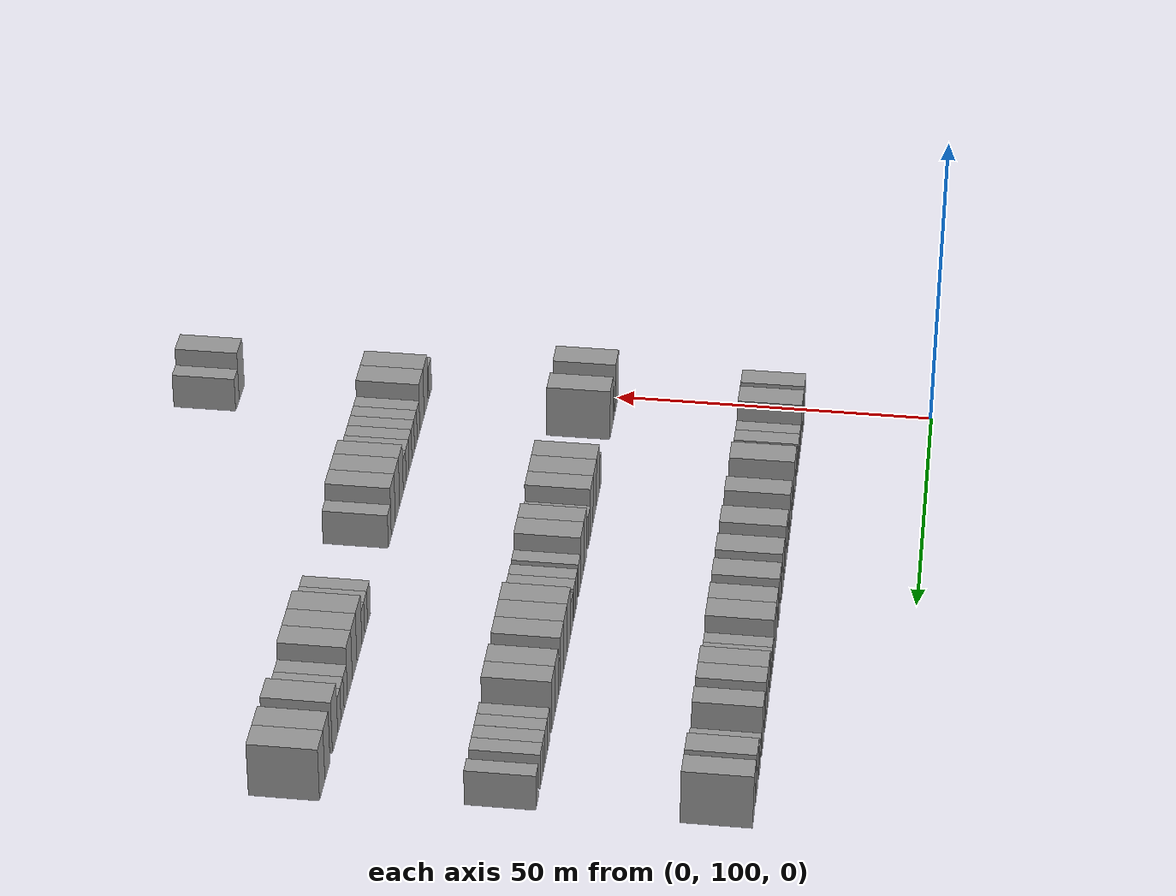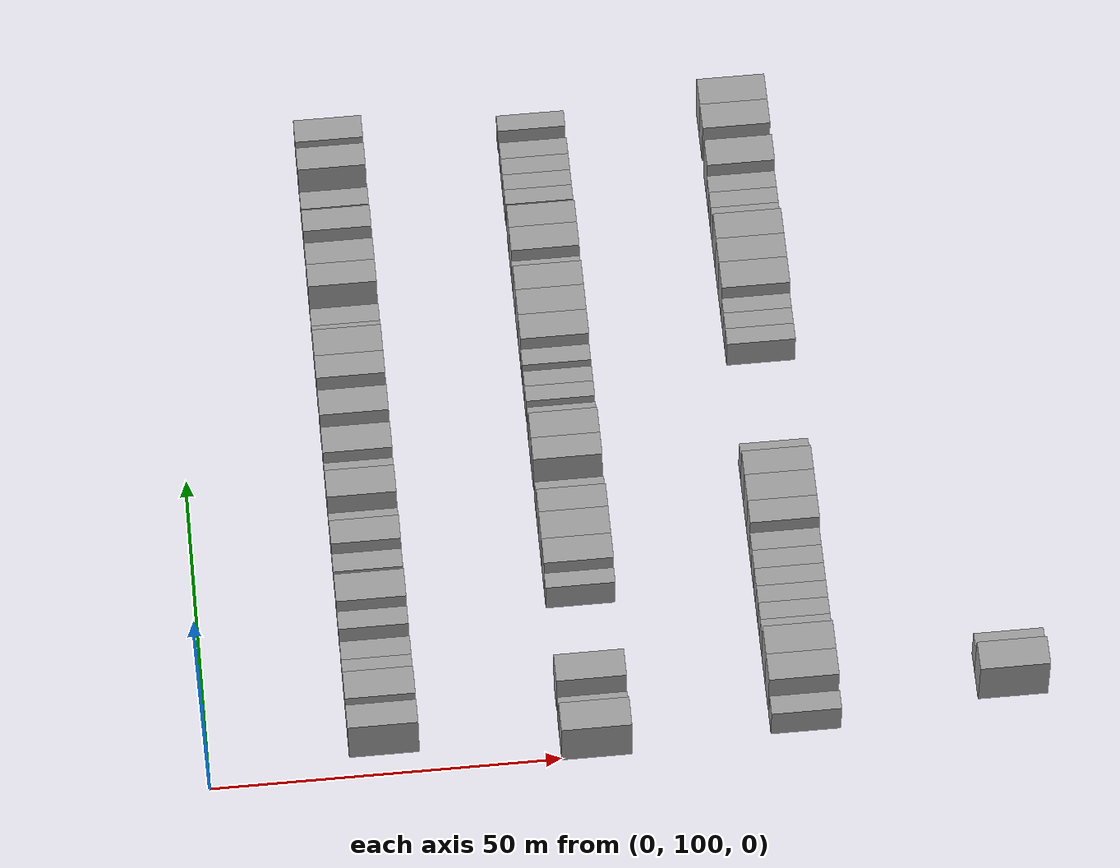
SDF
<sdf version="1.6">
 <world name="default">
  <model name="building_127">
   <static>1</static>
   <pose>25.0000 104.9648 0 0.000000 0.000000 0.000000</pose>
   <link name="link">
    <pose>0 0 4.50 0 0 0</pose>
    <collision name="collision"><geometry><box><size>10.0000 3.6911 9.0000</size></box></geometry></collision>
    <visual name="visual">
     <cast_shadows>0</cast_shadows>
     <geometry><box><size>10.0000 3.6911 9.0000</size></box></geometry>
     <material>
      <script>
       <uri>model://grey_wall/materials/scripts</uri>
       <uri>model://grey_wall/materials/textures</uri>
       <name>vrc/grey_wall</name>
      </script>
     </material>
    </visual>
   </link>
  </model>
  <model name="building_128">
   <static>1</static>
   <pose>25.0000 109.9829 0 0.000000 0.000000 0.000000</pose>
   <link name="link">
    <pose>0 0 4.50 0 0 0</pose>
    <collision name="collision"><geometry><box><size>10.0000 4.3452 9.0000</size></box></geometry></collision>
    <visual name="visual">
     <cast_shadows>0</cast_shadows>
     <geometry><box><size>10.0000 4.3452 9.0000</size></box></geometry>
     <material>
      <script>
       <uri>model://grey_wall/materials/scripts</uri>
       <uri>model://grey_wall/materials/textures</uri>
       <name>vrc/grey_wall</name>
      </script>
     </material>
    </visual>
   </link>
  </model>
  <model name="building_129">
   <static>1</static>
   <pose>25.0000 114.4085 0 0.000000 0.000000 0.000000</pose>
   <link name="link">
    <pose>0 0 3.00 0 0 0</pose>
    <collision name="collision"><geometry><box><size>10.0000 2.5061 6.0000</size></box></geometry></collision>
    <visual name="visual">
     <cast_shadows>0</cast_shadows>
     <geometry><box><size>10.0000 2.5061 6.0000</size></box></geometry>
     <material>
      <script>
       <uri>model://grey_wall/materials/scripts</uri>
       <uri>model://grey_wall/materials/textures</uri>
       <name>vrc/grey_wall</name>
      </script>
     </material>
    </visual>
   </link>
  </model>
  <model name="building_130">
   <static>1</static>
   <pose>25.0000 117.1323 0 0.000000 0.000000 0.000000</pose>
   <link name="link">
    <pose>0 0 3.00 0 0 0</pose>
    <collision name="collision"><geometry><box><size>10.0000 2.9415 6.0000</size></box></geometry></collision>
    <visual name="visual">
     <cast_shadows>0</cast_shadows>
     <geometry><box><size>10.0000 2.9415 6.0000</size></box></geometry>
     <material>
      <script>
       <uri>model://grey_wall/materials/scripts</uri>
       <uri>model://grey_wall/materials/textures</uri>
       <name>vrc/grey_wall</name>
      </script>
     </material>
    </visual>
   </link>
  </model>
  <model name="building_131">
   <static>1</static>
   <pose>25.0000 122.0449 0 0.000000 0.000000 0.000000</pose>
   <link name="link">
    <pose>0 0 3.00 0 0 0</pose>
    <collision name="collision"><geometry><box><size>10.0000 2.8836 6.0000</size></box></geometry></collision>
    <visual name="visual">
     <cast_shadows>0</cast_shadows>
     <geometry><box><size>10.0000 2.8836 6.0000</size></box></geometry>
     <material>
      <script>
       <uri>model://grey_wall/materials/scripts</uri>
       <uri>model://grey_wall/materials/textures</uri>
       <name>vrc/grey_wall</name>
      </script>
     </material>
    </visual>
   </link>
  </model>
  <model name="building_132">
   <static>1</static>
   <pose>25.0000 125.7158 0 0.000000 0.000000 0.000000</pose>
   <link name="link">
    <pose>0 0 4.50 0 0 0</pose>
    <collision name="collision"><geometry><box><size>10.0000 4.4583 9.0000</size></box></geometry></collision>
    <visual name="visual">
     <cast_shadows>0</cast_shadows>
     <geometry><box><size>10.0000 4.4583 9.0000</size></box></geometry>
     <material>
      <script>
       <uri>model://grey_wall/materials/scripts</uri>
       <uri>model://grey_wall/materials/textures</uri>
       <name>vrc/grey_wall</name>
      </script>
     </material>
    </visual>
   </link>
  </model>
  <model name="building_133">
   <static>1</static>
   <pose>25.0000 131.4169 0 0.000000 0.000000 0.000000</pose>
   <link name="link">
    <pose>0 0 3.00 0 0 0</pose>
    <collision name="collision"><geometry><box><size>10.0000 2.9439 6.0000</size></box></geometry></collision>
    <visual name="visual">
     <cast_shadows>0</cast_shadows>
     <geometry><box><size>10.0000 2.9439 6.0000</size></box></geometry>
     <material>
      <script>
       <uri>model://grey_wall/materials/scripts</uri>
       <uri>model://grey_wall/materials/textures</uri>
       <name>vrc/grey_wall</name>
      </script>
     </material>
    </visual>
   </link>
  </model>
  <model name="building_134">
   <static>1</static>
   <pose>25.0000 134.8020 0 0.000000 0.000000 0.000000</pose>
   <link name="link">
    <pose>0 0 4.50 0 0 0</pose>
    <collision name="collision"><geometry><box><size>10.0000 3.8262 9.0000</size></box></geometry></collision>
    <visual name="visual">
     <cast_shadows>0</cast_shadows>
     <geometry><box><size>10.0000 3.8262 9.0000</size></box></geometry>
     <material>
      <script>
       <uri>model://grey_wall/materials/scripts</uri>
       <uri>model://grey_wall/materials/textures</uri>
       <name>vrc/grey_wall</name>
      </script>
     </material>
    </visual>
   </link>
  </model>
  <model name="building_135">
   <static>1</static>
   <pose>25.0000 138.1453 0 0.000000 0.000000 0.000000</pose>
   <link name="link">
    <pose>0 0 3.00 0 0 0</pose>
    <collision name="collision"><geometry><box><size>10.0000 2.8604 6.0000</size></box></geometry></collision>
    <visual name="visual">
     <cast_shadows>0</cast_shadows>
     <geometry><box><size>10.0000 2.8604 6.0000</size></box></geometry>
     <material>
      <script>
       <uri>model://grey_wall/materials/scripts</uri>
       <uri>model://grey_wall/materials/textures</uri>
       <name>vrc/grey_wall</name>
      </script>
     </material>
    </visual>
   </link>
  </model>
  <model name="building_136">
   <static>1</static>
   <pose>25.0000 142.7866 0 0.000000 0.000000 0.000000</pose>
   <link name="link">
    <pose>0 0 4.50 0 0 0</pose>
    <collision name="collision"><geometry><box><size>10.0000 4.4223 9.0000</size></box></geometry></collision>
    <visual name="visual">
     <cast_shadows>0</cast_shadows>
     <geometry><box><size>10.0000 4.4223 9.0000</size></box></geometry>
     <material>
      <script>
       <uri>model://grey_wall/materials/scripts</uri>
       <uri>model://grey_wall/materials/textures</uri>
       <name>vrc/grey_wall</name>
      </script>
     </material>
    </visual>
   </link>
  </model>
  <model name="building_137">
   <static>1</static>
   <pose>25.0000 146.4491 0 0.000000 0.000000 0.000000</pose>
   <link name="link">
    <pose>0 0 3.00 0 0 0</pose>
    <collision name="collision"><geometry><box><size>10.0000 2.9027 6.0000</size></box></geometry></collision>
    <visual name="visual">
     <cast_shadows>0</cast_shadows>
     <geometry><box><size>10.0000 2.9027 6.0000</size></box></geometry>
     <material>
      <script>
       <uri>model://grey_wall/materials/scripts</uri>
       <uri>model://grey_wall/materials/textures</uri>
       <name>vrc/grey_wall</name>
      </script>
     </material>
    </visual>
   </link>
  </model>
  <model name="building_138">
   <static>1</static>
   <pose>25.0000 150.0336 0 0.000000 0.000000 0.000000</pose>
   <link name="link">
    <pose>0 0 4.50 0 0 0</pose>
    <collision name="collision"><geometry><box><size>10.0000 4.2664 9.0000</size></box></geometry></collision>
    <visual name="visual">
     <cast_shadows>0</cast_shadows>
     <geometry><box><size>10.0000 4.2664 9.0000</size></box></geometry>
     <material>
      <script>
       <uri>model://grey_wall/materials/scripts</uri>
       <uri>model://grey_wall/materials/textures</uri>
       <name>vrc/grey_wall</name>
      </script>
     </material>
    </visual>
   </link>
  </model>
  <model name="building_139">
   <static>1</static>
   <pose>25.0000 156.2660 0 0.000000 0.000000 0.000000</pose>
   <link name="link">
    <pose>0 0 4.50 0 0 0</pose>
    <collision name="collision"><geometry><box><size>10.0000 4.1983 9.0000</size></box></geometry></collision>
    <visual name="visual">
     <cast_shadows>0</cast_shadows>
     <geometry><box><size>10.0000 4.1983 9.0000</size></box></geometry>
     <material>
      <script>
       <uri>model://grey_wall/materials/scripts</uri>
       <uri>model://grey_wall/materials/textures</uri>
       <name>vrc/grey_wall</name>
      </script>
     </material>
    </visual>
   </link>
  </model>
  <model name="building_140">
   <static>1</static>
   <pose>25.0000 162.2489 0 0.000000 0.000000 0.000000</pose>
   <link name="link">
    <pose>0 0 4.50 0 0 0</pose>
    <collision name="collision"><geometry><box><size>10.0000 3.7675 9.0000</size></box></geometry></collision>
    <visual name="visual">
     <cast_shadows>0</cast_shadows>
     <geometry><box><size>10.0000 3.7675 9.0000</size></box></geometry>
     <material>
      <script>
       <uri>model://grey_wall/materials/scripts</uri>
       <uri>model://grey_wall/materials/textures</uri>
       <name>vrc/grey_wall</name>
      </script>
     </material>
    </visual>
   </link>
  </model>
  <model name="building_141">
   <static>1</static>
   <pose>25.0000 166.3212 0 0.000000 0.000000 0.000000</pose>
   <link name="link">
    <pose>0 0 4.50 0 0 0</pose>
    <collision name="collision"><geometry><box><size>10.0000 4.3771 9.0000</size></box></geometry></collision>
    <visual name="visual">
     <cast_shadows>0</cast_shadows>
     <geometry><box><size>10.0000 4.3771 9.0000</size></box></geometry>
     <material>
      <script>
       <uri>model://grey_wall/materials/scripts</uri>
       <uri>model://grey_wall/materials/textures</uri>
       <name>vrc/grey_wall</name>
      </script>
     </material>
    </visual>
   </link>
  </model>
  <model name="building_142">
   <static>1</static>
   <pose>25.0000 169.7186 0 0.000000 0.000000 0.000000</pose>
   <link name="link">
    <pose>0 0 3.00 0 0 0</pose>
    <collision name="collision"><geometry><box><size>10.0000 2.4177 6.0000</size></box></geometry></collision>
    <visual name="visual">
     <cast_shadows>0</cast_shadows>
     <geometry><box><size>10.0000 2.4177 6.0000</size></box></geometry>
     <material>
      <script>
       <uri>model://grey_wall/materials/scripts</uri>
       <uri>model://grey_wall/materials/textures</uri>
       <name>vrc/grey_wall</name>
      </script>
     </material>
    </visual>
   </link>
  </model>
  <model name="building_143">
   <static>1</static>
   <pose>25.0000 172.3714 0 0.000000 0.000000 0.000000</pose>
   <link name="link">
    <pose>0 0 3.00 0 0 0</pose>
    <collision name="collision"><geometry><box><size>10.0000 2.8878 6.0000</size></box></geometry></collision>
    <visual name="visual">
     <cast_shadows>0</cast_shadows>
     <geometry><box><size>10.0000 2.8878 6.0000</size></box></geometry>
     <material>
      <script>
       <uri>model://grey_wall/materials/scripts</uri>
       <uri>model://grey_wall/materials/textures</uri>
       <name>vrc/grey_wall</name>
      </script>
     </material>
    </visual>
   </link>
  </model>
  <model name="building_144">
   <static>1</static>
   <pose>25.0000 177.7145 0 0.000000 0.000000 0.000000</pose>
   <link name="link">
    <pose>0 0 4.50 0 0 0</pose>
    <collision name="collision"><geometry><box><size>10.0000 3.7985 9.0000</size></box></geometry></collision>
    <visual name="visual">
     <cast_shadows>0</cast_shadows>
     <geometry><box><size>10.0000 3.7985 9.0000</size></box></geometry>
     <material>
      <script>
       <uri>model://grey_wall/materials/scripts</uri>
       <uri>model://grey_wall/materials/textures</uri>
       <name>vrc/grey_wall</name>
      </script>
     </material>
    </visual>
   </link>
  </model>
  <model name="building_145">
   <static>1</static>
   <pose>25.0000 181.4431 0 0.000000 0.000000 0.000000</pose>
   <link name="link">
    <pose>0 0 4.50 0 0 0</pose>
    <collision name="collision"><geometry><box><size>10.0000 3.6586 9.0000</size></box></geometry></collision>
    <visual name="visual">
     <cast_shadows>0</cast_shadows>
     <geometry><box><size>10.0000 3.6586 9.0000</size></box></geometry>
     <material>
      <script>
       <uri>model://grey_wall/materials/scripts</uri>
       <uri>model://grey_wall/materials/textures</uri>
       <name>vrc/grey_wall</name>
      </script>
     </material>
    </visual>
   </link>
  </model>
  <model name="building_146">
   <static>1</static>
   <pose>25.0000 187.0844 0 0.000000 0.000000 0.000000</pose>
   <link name="link">
    <pose>0 0 4.50 0 0 0</pose>
    <collision name="collision"><geometry><box><size>10.0000 3.6240 9.0000</size></box></geometry></collision>
    <visual name="visual">
     <cast_shadows>0</cast_shadows>
     <geometry><box><size>10.0000 3.6240 9.0000</size></box></geometry>
     <material>
      <script>
       <uri>model://grey_wall/materials/scripts</uri>
       <uri>model://grey_wall/materials/textures</uri>
       <name>vrc/grey_wall</name>
      </script>
     </material>
    </visual>
   </link>
  </model>
  <model name="building_147">
   <static>1</static>
   <pose>25.0000 192.3741 0 0.000000 0.000000 0.000000</pose>
   <link name="link">
    <pose>0 0 3.00 0 0 0</pose>
    <collision name="collision"><geometry><box><size>10.0000 2.9554 6.0000</size></box></geometry></collision>
    <visual name="visual">
     <cast_shadows>0</cast_shadows>
     <geometry><box><size>10.0000 2.9554 6.0000</size></box></geometry>
     <material>
      <script>
       <uri>model://grey_wall/materials/scripts</uri>
       <uri>model://grey_wall/materials/textures</uri>
       <name>vrc/grey_wall</name>
      </script>
     </material>
    </visual>
   </link>
  </model>
  <model name="building_148">
   <static>1</static>
   <pose>25.0000 197.7611 0 0.000000 0.000000 0.000000</pose>
   <link name="link">
    <pose>0 0 4.50 0 0 0</pose>
    <collision name="collision"><geometry><box><size>10.0000 3.8187 9.0000</size></box></geometry></collision>
    <visual name="visual">
     <cast_shadows>0</cast_shadows>
     <geometry><box><size>10.0000 3.8187 9.0000</size></box></geometry>
     <material>
      <script>
       <uri>model://grey_wall/materials/scripts</uri>
       <uri>model://grey_wall/materials/textures</uri>
       <name>vrc/grey_wall</name>
      </script>
     </material>
    </visual>
   </link>
  </model>
  <model name="building_149">
   <static>1</static>
   <pose>25.0000 202.5559 0 0.000000 0.000000 0.000000</pose>
   <link name="link">
    <pose>0 0 4.50 0 0 0</pose>
    <collision name="collision"><geometry><box><size>10.0000 3.7707 9.0000</size></box></geometry></collision>
    <visual name="visual">
     <cast_shadows>0</cast_shadows>
     <geometry><box><size>10.0000 3.7707 9.0000</size></box></geometry>
     <material>
      <script>
       <uri>model://grey_wall/materials/scripts</uri>
       <uri>model://grey_wall/materials/textures</uri>
       <name>vrc/grey_wall</name>
      </script>
     </material>
    </visual>
   </link>
  </model>
  <model name="building_361">
   <static>1</static>
   <pose>55.0000 102.0599 0 0.000000 0.000000 0.000000</pose>
   <link name="link">
    <pose>0 0 4.50 0 0 0</pose>
    <collision name="collision"><geometry><box><size>10.0000 4.4511 9.0000</size></box></geometry></collision>
    <visual name="visual">
     <cast_shadows>0</cast_shadows>
     <geometry><box><size>10.0000 4.4511 9.0000</size></box></geometry>
     <material>
      <script>
       <uri>model://grey_wall/materials/scripts</uri>
       <uri>model://grey_wall/materials/textures</uri>
       <name>vrc/grey_wall</name>
      </script>
     </material>
    </visual>
   </link>
  </model>
  <model name="building_362">
   <static>1</static>
   <pose>55.0000 105.5211 0 0.000000 0.000000 0.000000</pose>
   <link name="link">
    <pose>0 0 3.00 0 0 0</pose>
    <collision name="collision"><geometry><box><size>10.0000 2.4714 6.0000</size></box></geometry></collision>
    <visual name="visual">
     <cast_shadows>0</cast_shadows>
     <geometry><box><size>10.0000 2.4714 6.0000</size></box></geometry>
     <material>
      <script>
       <uri>model://grey_wall/materials/scripts</uri>
       <uri>model://grey_wall/materials/textures</uri>
       <name>vrc/grey_wall</name>
      </script>
     </material>
    </visual>
   </link>
  </model>
  <model name="building_363">
   <static>1</static>
   <pose>55.0000 109.8866 0 0.000000 0.000000 0.000000</pose>
   <link name="link">
    <pose>0 0 4.50 0 0 0</pose>
    <collision name="collision"><geometry><box><size>10.0000 4.2597 9.0000</size></box></geometry></collision>
    <visual name="visual">
     <cast_shadows>0</cast_shadows>
     <geometry><box><size>10.0000 4.2597 9.0000</size></box></geometry>
     <material>
      <script>
       <uri>model://grey_wall/materials/scripts</uri>
       <uri>model://grey_wall/materials/textures</uri>
       <name>vrc/grey_wall</name>
      </script>
     </material>
    </visual>
   </link>
  </model>
  <model name="building_364">
   <static>1</static>
   <pose>55.0000 125.6384 0 0.000000 0.000000 0.000000</pose>
   <link name="link">
    <pose>0 0 3.00 0 0 0</pose>
    <collision name="collision"><geometry><box><size>10.0000 2.4146 6.0000</size></box></geometry></collision>
    <visual name="visual">
     <cast_shadows>0</cast_shadows>
     <geometry><box><size>10.0000 2.4146 6.0000</size></box></geometry>
     <material>
      <script>
       <uri>model://grey_wall/materials/scripts</uri>
       <uri>model://grey_wall/materials/textures</uri>
       <name>vrc/grey_wall</name>
      </script>
     </material>
    </visual>
   </link>
  </model>
  <model name="building_365">
   <static>1</static>
   <pose>55.0000 128.8602 0 0.000000 0.000000 0.000000</pose>
   <link name="link">
    <pose>0 0 4.50 0 0 0</pose>
    <collision name="collision"><geometry><box><size>10.0000 4.0290 9.0000</size></box></geometry></collision>
    <visual name="visual">
     <cast_shadows>0</cast_shadows>
     <geometry><box><size>10.0000 4.0290 9.0000</size></box></geometry>
     <material>
      <script>
       <uri>model://grey_wall/materials/scripts</uri>
       <uri>model://grey_wall/materials/textures</uri>
       <name>vrc/grey_wall</name>
      </script>
     </material>
    </visual>
   </link>
  </model>
  <model name="building_366">
   <static>1</static>
   <pose>55.0000 133.0785 0 0.000000 0.000000 0.000000</pose>
   <link name="link">
    <pose>0 0 4.50 0 0 0</pose>
    <collision name="collision"><geometry><box><size>10.0000 4.4076 9.0000</size></box></geometry></collision>
    <visual name="visual">
     <cast_shadows>0</cast_shadows>
     <geometry><box><size>10.0000 4.4076 9.0000</size></box></geometry>
     <material>
      <script>
       <uri>model://grey_wall/materials/scripts</uri>
       <uri>model://grey_wall/materials/textures</uri>
       <name>vrc/grey_wall</name>
      </script>
     </material>
    </visual>
   </link>
  </model>
  <model name="building_367">
   <static>1</static>
   <pose>55.0000 137.1438 0 0.000000 0.000000 0.000000</pose>
   <link name="link">
    <pose>0 0 4.50 0 0 0</pose>
    <collision name="collision"><geometry><box><size>10.0000 3.7231 9.0000</size></box></geometry></collision>
    <visual name="visual">
     <cast_shadows>0</cast_shadows>
     <geometry><box><size>10.0000 3.7231 9.0000</size></box></geometry>
     <material>
      <script>
       <uri>model://grey_wall/materials/scripts</uri>
       <uri>model://grey_wall/materials/textures</uri>
       <name>vrc/grey_wall</name>
      </script>
     </material>
    </visual>
   </link>
  </model>
  <model name="building_368">
   <static>1</static>
   <pose>55.0000 140.4481 0 0.000000 0.000000 0.000000</pose>
   <link name="link">
    <pose>0 0 3.00 0 0 0</pose>
    <collision name="collision"><geometry><box><size>10.0000 2.8855 6.0000</size></box></geometry></collision>
    <visual name="visual">
     <cast_shadows>0</cast_shadows>
     <geometry><box><size>10.0000 2.8855 6.0000</size></box></geometry>
     <material>
      <script>
       <uri>model://grey_wall/materials/scripts</uri>
       <uri>model://grey_wall/materials/textures</uri>
       <name>vrc/grey_wall</name>
      </script>
     </material>
    </visual>
   </link>
  </model>
  <model name="building_369">
   <static>1</static>
   <pose>55.0000 145.7088 0 0.000000 0.000000 0.000000</pose>
   <link name="link">
    <pose>0 0 4.50 0 0 0</pose>
    <collision name="collision"><geometry><box><size>10.0000 3.6359 9.0000</size></box></geometry></collision>
    <visual name="visual">
     <cast_shadows>0</cast_shadows>
     <geometry><box><size>10.0000 3.6359 9.0000</size></box></geometry>
     <material>
      <script>
       <uri>model://grey_wall/materials/scripts</uri>
       <uri>model://grey_wall/materials/textures</uri>
       <name>vrc/grey_wall</name>
      </script>
     </material>
    </visual>
   </link>
  </model>
  <model name="building_370">
   <static>1</static>
   <pose>55.0000 149.6013 0 0.000000 0.000000 0.000000</pose>
   <link name="link">
    <pose>0 0 4.50 0 0 0</pose>
    <collision name="collision"><geometry><box><size>10.0000 4.1490 9.0000</size></box></geometry></collision>
    <visual name="visual">
     <cast_shadows>0</cast_shadows>
     <geometry><box><size>10.0000 4.1490 9.0000</size></box></geometry>
     <material>
      <script>
       <uri>model://grey_wall/materials/scripts</uri>
       <uri>model://grey_wall/materials/textures</uri>
       <name>vrc/grey_wall</name>
      </script>
     </material>
    </visual>
   </link>
  </model>
  <model name="building_371">
   <static>1</static>
   <pose>55.0000 153.0036 0 0.000000 0.000000 0.000000</pose>
   <link name="link">
    <pose>0 0 3.00 0 0 0</pose>
    <collision name="collision"><geometry><box><size>10.0000 2.6556 6.0000</size></box></geometry></collision>
    <visual name="visual">
     <cast_shadows>0</cast_shadows>
     <geometry><box><size>10.0000 2.6556 6.0000</size></box></geometry>
     <material>
      <script>
       <uri>model://grey_wall/materials/scripts</uri>
       <uri>model://grey_wall/materials/textures</uri>
       <name>vrc/grey_wall</name>
      </script>
     </material>
    </visual>
   </link>
  </model>
  <model name="building_372">
   <static>1</static>
   <pose>55.0000 156.5957 0 0.000000 0.000000 0.000000</pose>
   <link name="link">
    <pose>0 0 3.00 0 0 0</pose>
    <collision name="collision"><geometry><box><size>10.0000 2.5285 6.0000</size></box></geometry></collision>
    <visual name="visual">
     <cast_shadows>0</cast_shadows>
     <geometry><box><size>10.0000 2.5285 6.0000</size></box></geometry>
     <material>
      <script>
       <uri>model://grey_wall/materials/scripts</uri>
       <uri>model://grey_wall/materials/textures</uri>
       <name>vrc/grey_wall</name>
      </script>
     </material>
    </visual>
   </link>
  </model>
  <model name="building_373">
   <static>1</static>
   <pose>55.0000 159.1207 0 0.000000 0.000000 0.000000</pose>
   <link name="link">
    <pose>0 0 3.00 0 0 0</pose>
    <collision name="collision"><geometry><box><size>10.0000 2.5214 6.0000</size></box></geometry></collision>
    <visual name="visual">
     <cast_shadows>0</cast_shadows>
     <geometry><box><size>10.0000 2.5214 6.0000</size></box></geometry>
     <material>
      <script>
       <uri>model://grey_wall/materials/scripts</uri>
       <uri>model://grey_wall/materials/textures</uri>
       <name>vrc/grey_wall</name>
      </script>
     </material>
    </visual>
   </link>
  </model>
  <model name="building_374">
   <static>1</static>
   <pose>55.0000 162.7316 0 0.000000 0.000000 0.000000</pose>
   <link name="link">
    <pose>0 0 3.00 0 0 0</pose>
    <collision name="collision"><geometry><box><size>10.0000 2.7003 6.0000</size></box></geometry></collision>
    <visual name="visual">
     <cast_shadows>0</cast_shadows>
     <geometry><box><size>10.0000 2.7003 6.0000</size></box></geometry>
     <material>
      <script>
       <uri>model://grey_wall/materials/scripts</uri>
       <uri>model://grey_wall/materials/textures</uri>
       <name>vrc/grey_wall</name>
      </script>
     </material>
    </visual>
   </link>
  </model>
  <model name="building_375">
   <static>1</static>
   <pose>55.0000 166.1498 0 0.000000 0.000000 0.000000</pose>
   <link name="link">
    <pose>0 0 4.50 0 0 0</pose>
    <collision name="collision"><geometry><box><size>10.0000 4.1362 9.0000</size></box></geometry></collision>
    <visual name="visual">
     <cast_shadows>0</cast_shadows>
     <geometry><box><size>10.0000 4.1362 9.0000</size></box></geometry>
     <material>
      <script>
       <uri>model://grey_wall/materials/scripts</uri>
       <uri>model://grey_wall/materials/textures</uri>
       <name>vrc/grey_wall</name>
      </script>
     </material>
    </visual>
   </link>
  </model>
  <model name="building_376">
   <static>1</static>
   <pose>55.0000 170.3279 0 0.000000 0.000000 0.000000</pose>
   <link name="link">
    <pose>0 0 4.50 0 0 0</pose>
    <collision name="collision"><geometry><box><size>10.0000 4.2200 9.0000</size></box></geometry></collision>
    <visual name="visual">
     <cast_shadows>0</cast_shadows>
     <geometry><box><size>10.0000 4.2200 9.0000</size></box></geometry>
     <material>
      <script>
       <uri>model://grey_wall/materials/scripts</uri>
       <uri>model://grey_wall/materials/textures</uri>
       <name>vrc/grey_wall</name>
      </script>
     </material>
    </visual>
   </link>
  </model>
  <model name="building_377">
   <static>1</static>
   <pose>55.0000 174.4582 0 0.000000 0.000000 0.000000</pose>
   <link name="link">
    <pose>0 0 4.50 0 0 0</pose>
    <collision name="collision"><geometry><box><size>10.0000 4.0404 9.0000</size></box></geometry></collision>
    <visual name="visual">
     <cast_shadows>0</cast_shadows>
     <geometry><box><size>10.0000 4.0404 9.0000</size></box></geometry>
     <material>
      <script>
       <uri>model://grey_wall/materials/scripts</uri>
       <uri>model://grey_wall/materials/textures</uri>
       <name>vrc/grey_wall</name>
      </script>
     </material>
    </visual>
   </link>
  </model>
  <model name="building_378">
   <static>1</static>
   <pose>55.0000 177.7812 0 0.000000 0.000000 0.000000</pose>
   <link name="link">
    <pose>0 0 3.00 0 0 0</pose>
    <collision name="collision"><geometry><box><size>10.0000 2.6057 6.0000</size></box></geometry></collision>
    <visual name="visual">
     <cast_shadows>0</cast_shadows>
     <geometry><box><size>10.0000 2.6057 6.0000</size></box></geometry>
     <material>
      <script>
       <uri>model://grey_wall/materials/scripts</uri>
       <uri>model://grey_wall/materials/textures</uri>
       <name>vrc/grey_wall</name>
      </script>
     </material>
    </visual>
   </link>
  </model>
  <model name="building_379">
   <static>1</static>
   <pose>55.0000 181.0995 0 0.000000 0.000000 0.000000</pose>
   <link name="link">
    <pose>0 0 4.50 0 0 0</pose>
    <collision name="collision"><geometry><box><size>10.0000 4.0309 9.0000</size></box></geometry></collision>
    <visual name="visual">
     <cast_shadows>0</cast_shadows>
     <geometry><box><size>10.0000 4.0309 9.0000</size></box></geometry>
     <material>
      <script>
       <uri>model://grey_wall/materials/scripts</uri>
       <uri>model://grey_wall/materials/textures</uri>
       <name>vrc/grey_wall</name>
      </script>
     </material>
    </visual>
   </link>
  </model>
  <model name="building_380">
   <static>1</static>
   <pose>55.0000 184.9788 0 0.000000 0.000000 0.000000</pose>
   <link name="link">
    <pose>0 0 4.50 0 0 0</pose>
    <collision name="collision"><geometry><box><size>10.0000 3.7277 9.0000</size></box></geometry></collision>
    <visual name="visual">
     <cast_shadows>0</cast_shadows>
     <geometry><box><size>10.0000 3.7277 9.0000</size></box></geometry>
     <material>
      <script>
       <uri>model://grey_wall/materials/scripts</uri>
       <uri>model://grey_wall/materials/textures</uri>
       <name>vrc/grey_wall</name>
      </script>
     </material>
    </visual>
   </link>
  </model>
  <model name="building_381">
   <static>1</static>
   <pose>55.0000 190.1058 0 0.000000 0.000000 0.000000</pose>
   <link name="link">
    <pose>0 0 3.00 0 0 0</pose>
    <collision name="collision"><geometry><box><size>10.0000 2.5263 6.0000</size></box></geometry></collision>
    <visual name="visual">
     <cast_shadows>0</cast_shadows>
     <geometry><box><size>10.0000 2.5263 6.0000</size></box></geometry>
     <material>
      <script>
       <uri>model://grey_wall/materials/scripts</uri>
       <uri>model://grey_wall/materials/textures</uri>
       <name>vrc/grey_wall</name>
      </script>
     </material>
    </visual>
   </link>
  </model>
  <model name="building_382">
   <static>1</static>
   <pose>55.0000 192.6708 0 0.000000 0.000000 0.000000</pose>
   <link name="link">
    <pose>0 0 3.00 0 0 0</pose>
    <collision name="collision"><geometry><box><size>10.0000 2.6035 6.0000</size></box></geometry></collision>
    <visual name="visual">
     <cast_shadows>0</cast_shadows>
     <geometry><box><size>10.0000 2.6035 6.0000</size></box></geometry>
     <material>
      <script>
       <uri>model://grey_wall/materials/scripts</uri>
       <uri>model://grey_wall/materials/textures</uri>
       <name>vrc/grey_wall</name>
      </script>
     </material>
    </visual>
   </link>
  </model>
  <model name="building_383">
   <static>1</static>
   <pose>55.0000 195.3695 0 0.000000 0.000000 0.000000</pose>
   <link name="link">
    <pose>0 0 3.00 0 0 0</pose>
    <collision name="collision"><geometry><box><size>10.0000 2.7938 6.0000</size></box></geometry></collision>
    <visual name="visual">
     <cast_shadows>0</cast_shadows>
     <geometry><box><size>10.0000 2.7938 6.0000</size></box></geometry>
     <material>
      <script>
       <uri>model://grey_wall/materials/scripts</uri>
       <uri>model://grey_wall/materials/textures</uri>
       <name>vrc/grey_wall</name>
      </script>
     </material>
    </visual>
   </link>
  </model>
  <model name="building_384">
   <static>1</static>
   <pose>55.0000 198.1610 0 0.000000 0.000000 0.000000</pose>
   <link name="link">
    <pose>0 0 3.00 0 0 0</pose>
    <collision name="collision"><geometry><box><size>10.0000 2.7892 6.0000</size></box></geometry></collision>
    <visual name="visual">
     <cast_shadows>0</cast_shadows>
     <geometry><box><size>10.0000 2.7892 6.0000</size></box></geometry>
     <material>
      <script>
       <uri>model://grey_wall/materials/scripts</uri>
       <uri>model://grey_wall/materials/textures</uri>
       <name>vrc/grey_wall</name>
      </script>
     </material>
    </visual>
   </link>
  </model>
  <model name="building_385">
   <static>1</static>
   <pose>55.0000 202.9023 0 0.000000 0.000000 0.000000</pose>
   <link name="link">
    <pose>0 0 3.00 0 0 0</pose>
    <collision name="collision"><geometry><box><size>10.0000 2.6934 6.0000</size></box></geometry></collision>
    <visual name="visual">
     <cast_shadows>0</cast_shadows>
     <geometry><box><size>10.0000 2.6934 6.0000</size></box></geometry>
     <material>
      <script>
       <uri>model://grey_wall/materials/scripts</uri>
       <uri>model://grey_wall/materials/textures</uri>
       <name>vrc/grey_wall</name>
      </script>
     </material>
    </visual>
   </link>
  </model>
  <model name="building_590">
   <static>1</static>
   <pose>85.0000 102.5777 0 0.000000 0.000000 0.000000</pose>
   <link name="link">
    <pose>0 0 3.00 0 0 0</pose>
    <collision name="collision"><geometry><box><size>10.0000 2.9041 6.0000</size></box></geometry></collision>
    <visual name="visual">
     <cast_shadows>0</cast_shadows>
     <geometry><box><size>10.0000 2.9041 6.0000</size></box></geometry>
     <material>
      <script>
       <uri>model://grey_wall/materials/scripts</uri>
       <uri>model://grey_wall/materials/textures</uri>
       <name>vrc/grey_wall</name>
      </script>
     </material>
    </visual>
   </link>
  </model>
  <model name="building_591">
   <static>1</static>
   <pose>85.0000 107.1313 0 0.000000 0.000000 0.000000</pose>
   <link name="link">
    <pose>0 0 4.50 0 0 0</pose>
    <collision name="collision"><geometry><box><size>10.0000 4.2031 9.0000</size></box></geometry></collision>
    <visual name="visual">
     <cast_shadows>0</cast_shadows>
     <geometry><box><size>10.0000 4.2031 9.0000</size></box></geometry>
     <material>
      <script>
       <uri>model://grey_wall/materials/scripts</uri>
       <uri>model://grey_wall/materials/textures</uri>
       <name>vrc/grey_wall</name>
      </script>
     </material>
    </visual>
   </link>
  </model>
  <model name="building_592">
   <static>1</static>
   <pose>85.0000 111.4720 0 0.000000 0.000000 0.000000</pose>
   <link name="link">
    <pose>0 0 4.50 0 0 0</pose>
    <collision name="collision"><geometry><box><size>10.0000 4.4783 9.0000</size></box></geometry></collision>
    <visual name="visual">
     <cast_shadows>0</cast_shadows>
     <geometry><box><size>10.0000 4.4783 9.0000</size></box></geometry>
     <material>
      <script>
       <uri>model://grey_wall/materials/scripts</uri>
       <uri>model://grey_wall/materials/textures</uri>
       <name>vrc/grey_wall</name>
      </script>
     </material>
    </visual>
   </link>
  </model>
  <model name="building_593">
   <static>1</static>
   <pose>85.0000 115.0771 0 0.000000 0.000000 0.000000</pose>
   <link name="link">
    <pose>0 0 3.00 0 0 0</pose>
    <collision name="collision"><geometry><box><size>10.0000 2.7319 6.0000</size></box></geometry></collision>
    <visual name="visual">
     <cast_shadows>0</cast_shadows>
     <geometry><box><size>10.0000 2.7319 6.0000</size></box></geometry>
     <material>
      <script>
       <uri>model://grey_wall/materials/scripts</uri>
       <uri>model://grey_wall/materials/textures</uri>
       <name>vrc/grey_wall</name>
      </script>
     </material>
    </visual>
   </link>
  </model>
  <model name="building_594">
   <static>1</static>
   <pose>85.0000 117.8040 0 0.000000 0.000000 0.000000</pose>
   <link name="link">
    <pose>0 0 3.00 0 0 0</pose>
    <collision name="collision"><geometry><box><size>10.0000 2.7219 6.0000</size></box></geometry></collision>
    <visual name="visual">
     <cast_shadows>0</cast_shadows>
     <geometry><box><size>10.0000 2.7219 6.0000</size></box></geometry>
     <material>
      <script>
       <uri>model://grey_wall/materials/scripts</uri>
       <uri>model://grey_wall/materials/textures</uri>
       <name>vrc/grey_wall</name>
      </script>
     </material>
    </visual>
   </link>
  </model>
  <model name="building_595">
   <static>1</static>
   <pose>85.0000 120.5294 0 0.000000 0.000000 0.000000</pose>
   <link name="link">
    <pose>0 0 3.00 0 0 0</pose>
    <collision name="collision"><geometry><box><size>10.0000 2.7290 6.0000</size></box></geometry></collision>
    <visual name="visual">
     <cast_shadows>0</cast_shadows>
     <geometry><box><size>10.0000 2.7290 6.0000</size></box></geometry>
     <material>
      <script>
       <uri>model://grey_wall/materials/scripts</uri>
       <uri>model://grey_wall/materials/textures</uri>
       <name>vrc/grey_wall</name>
      </script>
     </material>
    </visual>
   </link>
  </model>
  <model name="building_596">
   <static>1</static>
   <pose>85.0000 123.3190 0 0.000000 0.000000 0.000000</pose>
   <link name="link">
    <pose>0 0 3.00 0 0 0</pose>
    <collision name="collision"><geometry><box><size>10.0000 2.8501 6.0000</size></box></geometry></collision>
    <visual name="visual">
     <cast_shadows>0</cast_shadows>
     <geometry><box><size>10.0000 2.8501 6.0000</size></box></geometry>
     <material>
      <script>
       <uri>model://grey_wall/materials/scripts</uri>
       <uri>model://grey_wall/materials/textures</uri>
       <name>vrc/grey_wall</name>
      </script>
     </material>
    </visual>
   </link>
  </model>
  <model name="building_597">
   <static>1</static>
   <pose>85.0000 126.2328 0 0.000000 0.000000 0.000000</pose>
   <link name="link">
    <pose>0 0 3.00 0 0 0</pose>
    <collision name="collision"><geometry><box><size>10.0000 2.9776 6.0000</size></box></geometry></collision>
    <visual name="visual">
     <cast_shadows>0</cast_shadows>
     <geometry><box><size>10.0000 2.9776 6.0000</size></box></geometry>
     <material>
      <script>
       <uri>model://grey_wall/materials/scripts</uri>
       <uri>model://grey_wall/materials/textures</uri>
       <name>vrc/grey_wall</name>
      </script>
     </material>
    </visual>
   </link>
  </model>
  <model name="building_598">
   <static>1</static>
   <pose>85.0000 129.1467 0 0.000000 0.000000 0.000000</pose>
   <link name="link">
    <pose>0 0 3.00 0 0 0</pose>
    <collision name="collision"><geometry><box><size>10.0000 2.8500 6.0000</size></box></geometry></collision>
    <visual name="visual">
     <cast_shadows>0</cast_shadows>
     <geometry><box><size>10.0000 2.8500 6.0000</size></box></geometry>
     <material>
      <script>
       <uri>model://grey_wall/materials/scripts</uri>
       <uri>model://grey_wall/materials/textures</uri>
       <name>vrc/grey_wall</name>
      </script>
     </material>
    </visual>
   </link>
  </model>
  <model name="building_599">
   <static>1</static>
   <pose>85.0000 132.3991 0 0.000000 0.000000 0.000000</pose>
   <link name="link">
    <pose>0 0 4.50 0 0 0</pose>
    <collision name="collision"><geometry><box><size>10.0000 3.6549 9.0000</size></box></geometry></collision>
    <visual name="visual">
     <cast_shadows>0</cast_shadows>
     <geometry><box><size>10.0000 3.6549 9.0000</size></box></geometry>
     <material>
      <script>
       <uri>model://grey_wall/materials/scripts</uri>
       <uri>model://grey_wall/materials/textures</uri>
       <name>vrc/grey_wall</name>
      </script>
     </material>
    </visual>
   </link>
  </model>
  <model name="building_600">
   <static>1</static>
   <pose>85.0000 136.3751 0 0.000000 0.000000 0.000000</pose>
   <link name="link">
    <pose>0 0 4.50 0 0 0</pose>
    <collision name="collision"><geometry><box><size>10.0000 4.2972 9.0000</size></box></geometry></collision>
    <visual name="visual">
     <cast_shadows>0</cast_shadows>
     <geometry><box><size>10.0000 4.2972 9.0000</size></box></geometry>
     <material>
      <script>
       <uri>model://grey_wall/materials/scripts</uri>
       <uri>model://grey_wall/materials/textures</uri>
       <name>vrc/grey_wall</name>
      </script>
     </material>
    </visual>
   </link>
  </model>
  <model name="building_601">
   <static>1</static>
   <pose>85.0000 140.4750 0 0.000000 0.000000 0.000000</pose>
   <link name="link">
    <pose>0 0 4.50 0 0 0</pose>
    <collision name="collision"><geometry><box><size>10.0000 3.9025 9.0000</size></box></geometry></collision>
    <visual name="visual">
     <cast_shadows>0</cast_shadows>
     <geometry><box><size>10.0000 3.9025 9.0000</size></box></geometry>
     <material>
      <script>
       <uri>model://grey_wall/materials/scripts</uri>
       <uri>model://grey_wall/materials/textures</uri>
       <name>vrc/grey_wall</name>
      </script>
     </material>
    </visual>
   </link>
  </model>
  <model name="building_602">
   <static>1</static>
   <pose>85.0000 143.8813 0 0.000000 0.000000 0.000000</pose>
   <link name="link">
    <pose>0 0 3.00 0 0 0</pose>
    <collision name="collision"><geometry><box><size>10.0000 2.9100 6.0000</size></box></geometry></collision>
    <visual name="visual">
     <cast_shadows>0</cast_shadows>
     <geometry><box><size>10.0000 2.9100 6.0000</size></box></geometry>
     <material>
      <script>
       <uri>model://grey_wall/materials/scripts</uri>
       <uri>model://grey_wall/materials/textures</uri>
       <name>vrc/grey_wall</name>
      </script>
     </material>
    </visual>
   </link>
  </model>
  <model name="building_603">
   <static>1</static>
   <pose>85.0000 163.3532 0 0.000000 0.000000 0.000000</pose>
   <link name="link">
    <pose>0 0 3.00 0 0 0</pose>
    <collision name="collision"><geometry><box><size>10.0000 2.6780 6.0000</size></box></geometry></collision>
    <visual name="visual">
     <cast_shadows>0</cast_shadows>
     <geometry><box><size>10.0000 2.6780 6.0000</size></box></geometry>
     <material>
      <script>
       <uri>model://grey_wall/materials/scripts</uri>
       <uri>model://grey_wall/materials/textures</uri>
       <name>vrc/grey_wall</name>
      </script>
     </material>
    </visual>
   </link>
  </model>
  <model name="building_604">
   <static>1</static>
   <pose>85.0000 166.0156 0 0.000000 0.000000 0.000000</pose>
   <link name="link">
    <pose>0 0 3.00 0 0 0</pose>
    <collision name="collision"><geometry><box><size>10.0000 2.6466 6.0000</size></box></geometry></collision>
    <visual name="visual">
     <cast_shadows>0</cast_shadows>
     <geometry><box><size>10.0000 2.6466 6.0000</size></box></geometry>
     <material>
      <script>
       <uri>model://grey_wall/materials/scripts</uri>
       <uri>model://grey_wall/materials/textures</uri>
       <name>vrc/grey_wall</name>
      </script>
     </material>
    </visual>
   </link>
  </model>
  <model name="building_605">
   <static>1</static>
   <pose>85.0000 168.5901 0 0.000000 0.000000 0.000000</pose>
   <link name="link">
    <pose>0 0 3.00 0 0 0</pose>
    <collision name="collision"><geometry><box><size>10.0000 2.5026 6.0000</size></box></geometry></collision>
    <visual name="visual">
     <cast_shadows>0</cast_shadows>
     <geometry><box><size>10.0000 2.5026 6.0000</size></box></geometry>
     <material>
      <script>
       <uri>model://grey_wall/materials/scripts</uri>
       <uri>model://grey_wall/materials/textures</uri>
       <name>vrc/grey_wall</name>
      </script>
     </material>
    </visual>
   </link>
  </model>
  <model name="building_606">
   <static>1</static>
   <pose>85.0000 172.0464 0 0.000000 0.000000 0.000000</pose>
   <link name="link">
    <pose>0 0 4.50 0 0 0</pose>
    <collision name="collision"><geometry><box><size>10.0000 4.4101 9.0000</size></box></geometry></collision>
    <visual name="visual">
     <cast_shadows>0</cast_shadows>
     <geometry><box><size>10.0000 4.4101 9.0000</size></box></geometry>
     <material>
      <script>
       <uri>model://grey_wall/materials/scripts</uri>
       <uri>model://grey_wall/materials/textures</uri>
       <name>vrc/grey_wall</name>
      </script>
     </material>
    </visual>
   </link>
  </model>
  <model name="building_607">
   <static>1</static>
   <pose>85.0000 176.2685 0 0.000000 0.000000 0.000000</pose>
   <link name="link">
    <pose>0 0 4.50 0 0 0</pose>
    <collision name="collision"><geometry><box><size>10.0000 4.0340 9.0000</size></box></geometry></collision>
    <visual name="visual">
     <cast_shadows>0</cast_shadows>
     <geometry><box><size>10.0000 4.0340 9.0000</size></box></geometry>
     <material>
      <script>
       <uri>model://grey_wall/materials/scripts</uri>
       <uri>model://grey_wall/materials/textures</uri>
       <name>vrc/grey_wall</name>
      </script>
     </material>
    </visual>
   </link>
  </model>
  <model name="building_608">
   <static>1</static>
   <pose>85.0000 180.4077 0 0.000000 0.000000 0.000000</pose>
   <link name="link">
    <pose>0 0 4.50 0 0 0</pose>
    <collision name="collision"><geometry><box><size>10.0000 4.2444 9.0000</size></box></geometry></collision>
    <visual name="visual">
     <cast_shadows>0</cast_shadows>
     <geometry><box><size>10.0000 4.2444 9.0000</size></box></geometry>
     <material>
      <script>
       <uri>model://grey_wall/materials/scripts</uri>
       <uri>model://grey_wall/materials/textures</uri>
       <name>vrc/grey_wall</name>
      </script>
     </material>
    </visual>
   </link>
  </model>
  <model name="building_609">
   <static>1</static>
   <pose>85.0000 183.9645 0 0.000000 0.000000 0.000000</pose>
   <link name="link">
    <pose>0 0 3.00 0 0 0</pose>
    <collision name="collision"><geometry><box><size>10.0000 2.8692 6.0000</size></box></geometry></collision>
    <visual name="visual">
     <cast_shadows>0</cast_shadows>
     <geometry><box><size>10.0000 2.8692 6.0000</size></box></geometry>
     <material>
      <script>
       <uri>model://grey_wall/materials/scripts</uri>
       <uri>model://grey_wall/materials/textures</uri>
       <name>vrc/grey_wall</name>
      </script>
     </material>
    </visual>
   </link>
  </model>
  <model name="building_610">
   <static>1</static>
   <pose>85.0000 186.7301 0 0.000000 0.000000 0.000000</pose>
   <link name="link">
    <pose>0 0 3.00 0 0 0</pose>
    <collision name="collision"><geometry><box><size>10.0000 2.6620 6.0000</size></box></geometry></collision>
    <visual name="visual">
     <cast_shadows>0</cast_shadows>
     <geometry><box><size>10.0000 2.6620 6.0000</size></box></geometry>
     <material>
      <script>
       <uri>model://grey_wall/materials/scripts</uri>
       <uri>model://grey_wall/materials/textures</uri>
       <name>vrc/grey_wall</name>
      </script>
     </material>
    </visual>
   </link>
  </model>
  <model name="building_611">
   <static>1</static>
   <pose>85.0000 189.4691 0 0.000000 0.000000 0.000000</pose>
   <link name="link">
    <pose>0 0 3.00 0 0 0</pose>
    <collision name="collision"><geometry><box><size>10.0000 2.8160 6.0000</size></box></geometry></collision>
    <visual name="visual">
     <cast_shadows>0</cast_shadows>
     <geometry><box><size>10.0000 2.8160 6.0000</size></box></geometry>
     <material>
      <script>
       <uri>model://grey_wall/materials/scripts</uri>
       <uri>model://grey_wall/materials/textures</uri>
       <name>vrc/grey_wall</name>
      </script>
     </material>
    </visual>
   </link>
  </model>
  <model name="building_612">
   <static>1</static>
   <pose>85.0000 193.0989 0 0.000000 0.000000 0.000000</pose>
   <link name="link">
    <pose>0 0 4.50 0 0 0</pose>
    <collision name="collision"><geometry><box><size>10.0000 4.4435 9.0000</size></box></geometry></collision>
    <visual name="visual">
     <cast_shadows>0</cast_shadows>
     <geometry><box><size>10.0000 4.4435 9.0000</size></box></geometry>
     <material>
      <script>
       <uri>model://grey_wall/materials/scripts</uri>
       <uri>model://grey_wall/materials/textures</uri>
       <name>vrc/grey_wall</name>
      </script>
     </material>
    </visual>
   </link>
  </model>
  <model name="building_613">
   <static>1</static>
   <pose>85.0000 199.4242 0 0.000000 0.000000 0.000000</pose>
   <link name="link">
    <pose>0 0 4.50 0 0 0</pose>
    <collision name="collision"><geometry><box><size>10.0000 4.2070 9.0000</size></box></geometry></collision>
    <visual name="visual">
     <cast_shadows>0</cast_shadows>
     <geometry><box><size>10.0000 4.2070 9.0000</size></box></geometry>
     <material>
      <script>
       <uri>model://grey_wall/materials/scripts</uri>
       <uri>model://grey_wall/materials/textures</uri>
       <name>vrc/grey_wall</name>
      </script>
     </material>
    </visual>
   </link>
  </model>
  <model name="building_614">
   <static>1</static>
   <pose>85.0000 203.7203 0 0.000000 0.000000 0.000000</pose>
   <link name="link">
    <pose>0 0 4.50 0 0 0</pose>
    <collision name="collision"><geometry><box><size>10.0000 4.3853 9.0000</size></box></geometry></collision>
    <visual name="visual">
     <cast_shadows>0</cast_shadows>
     <geometry><box><size>10.0000 4.3853 9.0000</size></box></geometry>
     <material>
      <script>
       <uri>model://grey_wall/materials/scripts</uri>
       <uri>model://grey_wall/materials/textures</uri>
       <name>vrc/grey_wall</name>
      </script>
     </material>
    </visual>
   </link>
  </model>
  <model name="building_810">
   <static>1</static>
   <pose>115.0000 106.0690 0 0.000000 0.000000 0.000000</pose>
   <link name="link">
    <pose>0 0 4.50 0 0 0</pose>
    <collision name="collision"><geometry><box><size>10.0000 4.3972 9.0000</size></box></geometry></collision>
    <visual name="visual">
     <cast_shadows>0</cast_shadows>
     <geometry><box><size>10.0000 4.3972 9.0000</size></box></geometry>
     <material>
      <script>
       <uri>model://grey_wall/materials/scripts</uri>
       <uri>model://grey_wall/materials/textures</uri>
       <name>vrc/grey_wall</name>
      </script>
     </material>
    </visual>
   </link>
  </model>
  <model name="building_811">
   <static>1</static>
   <pose>115.0000 109.7655 0 0.000000 0.000000 0.000000</pose>
   <link name="link">
    <pose>0 0 3.00 0 0 0</pose>
    <collision name="collision"><geometry><box><size>10.0000 2.9959 6.0000</size></box></geometry></collision>
    <visual name="visual">
     <cast_shadows>0</cast_shadows>
     <geometry><box><size>10.0000 2.9959 6.0000</size></box></geometry>
     <material>
      <script>
       <uri>model://grey_wall/materials/scripts</uri>
       <uri>model://grey_wall/materials/textures</uri>
       <name>vrc/grey_wall</name>
      </script>
     </material>
    </visual>
   </link>
  </model>
 </world>
</sdf>
